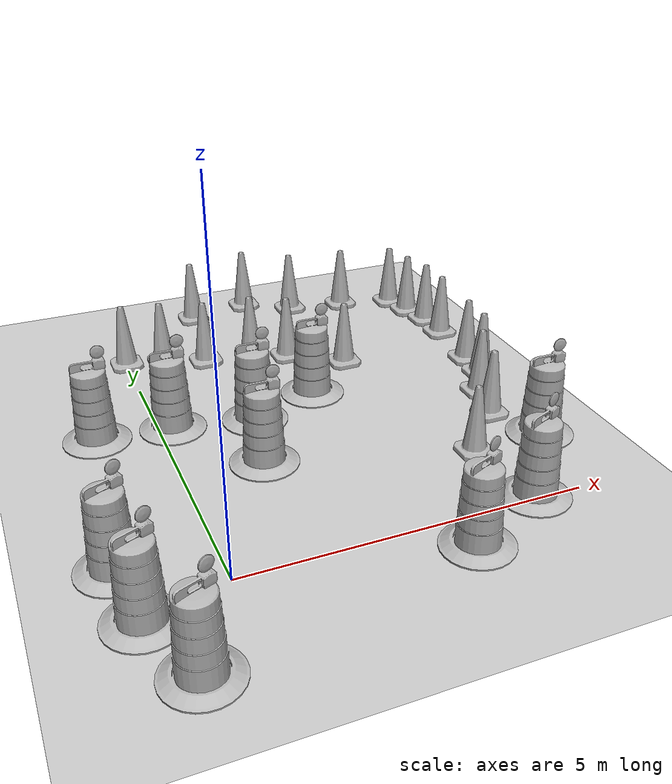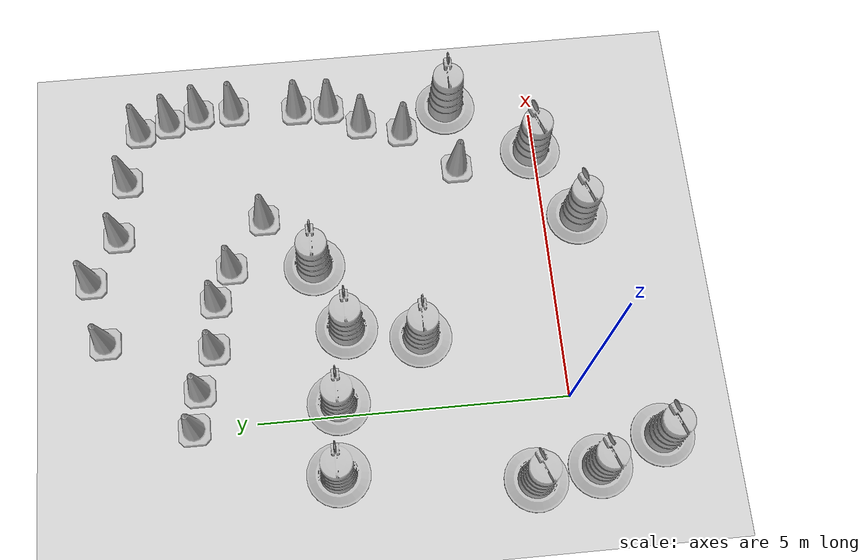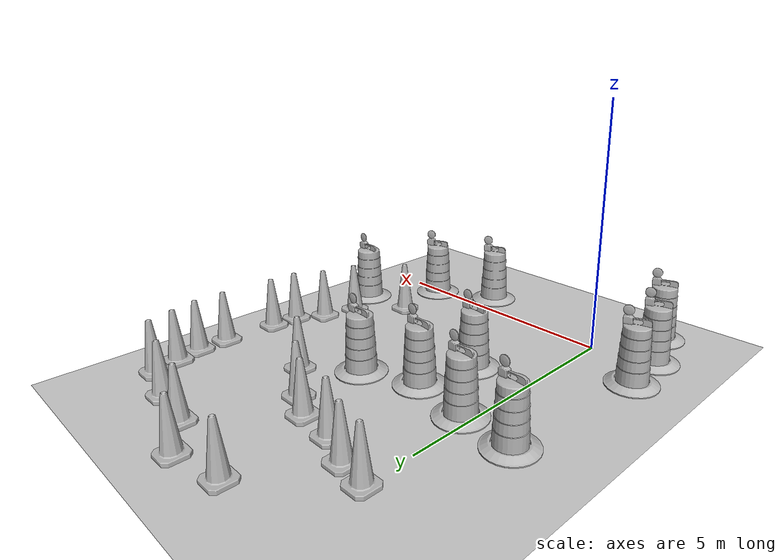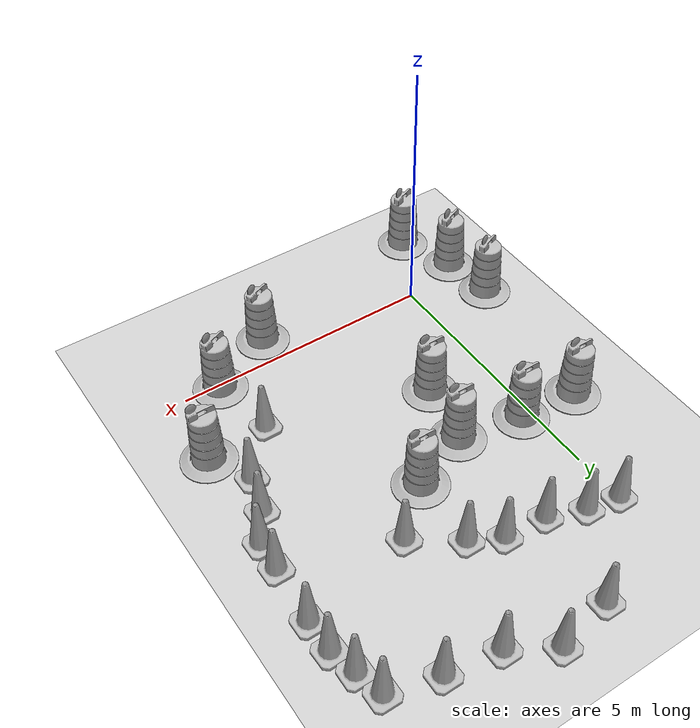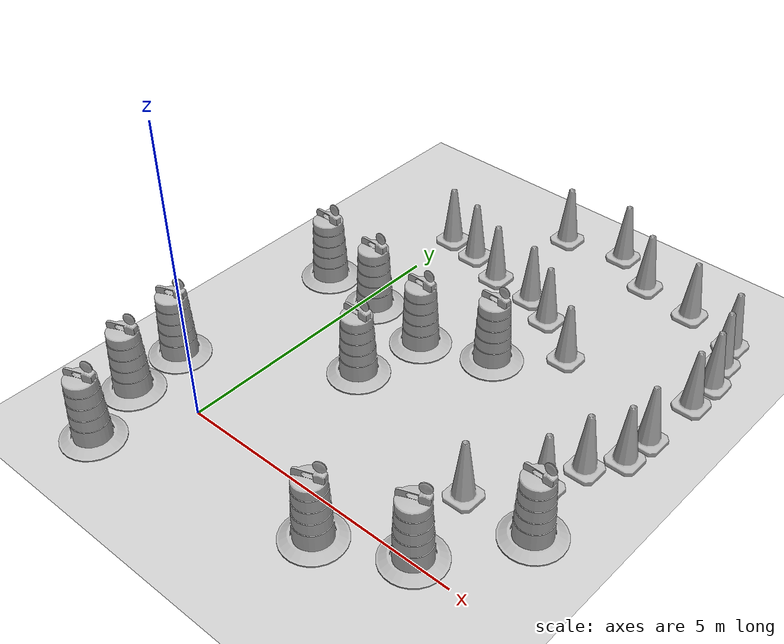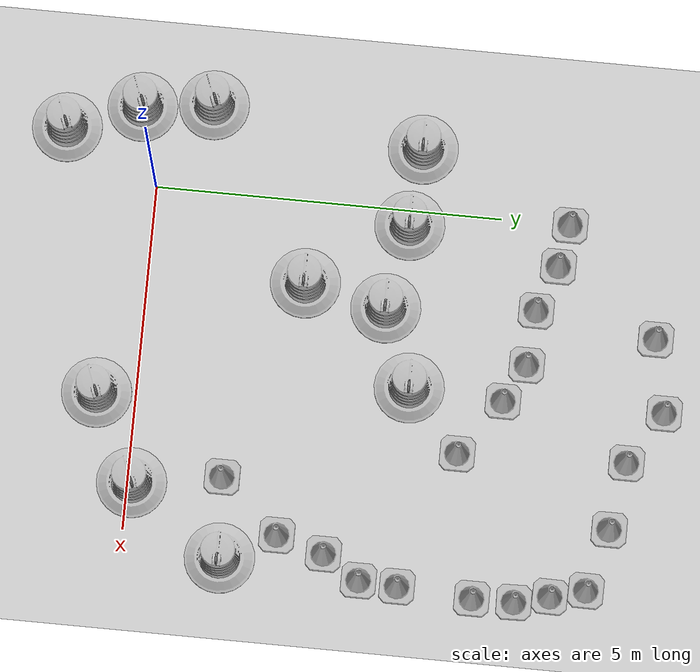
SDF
<sdf version="1.7">
 <world name="default">
  <light name="sun" type="directional">
   <pose>0 0 10 0 -0 0</pose>
   <diffuse>0.8 0.8 0.8 1</diffuse>
   <specular>0.2 0.2 0.2 1</specular>
   <attenuation>
    <range>1000</range>
    <constant>0.9</constant>
    <linear>0.01</linear>
    <quadratic>0.001</quadratic>
   </attenuation>
   <direction>-0.5 0.1 -0.9</direction>
   <spot><inner_angle>0</inner_angle><outer_angle>0</outer_angle><falloff>0</falloff></spot>
  </light>
  <model name="ground_plane">
   <static>1</static>
   <link name="link">
    <collision name="collision">
     <geometry><plane><normal>0 0 1</normal><size>100 100</size></plane></geometry>
     <surface>
      <contact><collide_bitmask>65535</collide_bitmask></contact>
      <friction><ode><mu>100</mu><mu2>50</mu2></ode></friction>
     </surface>
    </collision>
    <visual name="visual">
     <cast_shadows>0</cast_shadows>
     <geometry><plane><normal>0 0 1</normal><size>100 100</size></plane></geometry>
     <material>
      <script><uri>file://media/materials/scripts/gazebo.material</uri><name>Gazebo/Grey</name></script>
     </material>
    </visual>
   </link>
  </model>
  <gravity>0 0 -9.8</gravity>
  <magnetic_field>6e-06 2.3e-05 -4.2e-05</magnetic_field>
  <atmosphere type="adiabatic"/>
  <physics type="ode">
   <max_step_size>0.001</max_step_size>
   <real_time_factor>1</real_time_factor>
   <real_time_update_rate>1000</real_time_update_rate>
  </physics>
  <scene><ambient>0.4 0.4 0.4 1</ambient><background>0.7 0.7 0.7 1</background><shadows>1</shadows></scene>
  <spherical_coordinates>
   <surface_model>EARTH_WGS84</surface_model>
   <latitude_deg>0</latitude_deg>
   <longitude_deg>0</longitude_deg>
   <elevation>0</elevation>
   <heading_deg>0</heading_deg>
  </spherical_coordinates>
  <model name="Construction Cone">
   <link name="link">
    <collision name="collision">
     <geometry>
      <mesh><scale>10 10 10</scale><uri>model://construction_cone/meshes/construction_cone.dae</uri></mesh>
     </geometry>
    </collision>
    <visual name="visual">
     <geometry>
      <mesh><scale>10 10 10</scale><uri>model://construction_cone/meshes/construction_cone.dae</uri></mesh>
     </geometry>
    </visual>
    <inertial>
     <inertia><ixx>1</ixx><ixy>0</ixy><ixz>0</ixz><iyy>1</iyy><iyz>0</iyz><izz>1</izz></inertia>
     <mass>1</mass>
    </inertial>
   </link>
   <pose>4.11115 1.35486 -0 0 -1e-06 0</pose>
  </model>
  <model name="Construction Cone_clone">
   <link name="link">
    <collision name="collision">
     <geometry>
      <mesh><scale>10 10 10</scale><uri>model://construction_cone/meshes/construction_cone.dae</uri></mesh>
     </geometry>
    </collision>
    <visual name="visual">
     <geometry>
      <mesh><scale>10 10 10</scale><uri>model://construction_cone/meshes/construction_cone.dae</uri></mesh>
     </geometry>
    </visual>
    <inertial>
     <inertia><ixx>1</ixx><ixy>0</ixy><ixz>0</ixz><iyy>1</iyy><iyz>0</iyz><izz>1</izz></inertia>
     <mass>1</mass>
    </inertial>
   </link>
   <pose>5.44714 4 -0 0 -0 0</pose>
  </model>
  <model name="Construction Cone_clone_0">
   <link name="link">
    <collision name="collision">
     <geometry>
      <mesh><scale>10 10 10</scale><uri>model://construction_cone/meshes/construction_cone.dae</uri></mesh>
     </geometry>
    </collision>
    <visual name="visual">
     <geometry>
      <mesh><scale>10 10 10</scale><uri>model://construction_cone/meshes/construction_cone.dae</uri></mesh>
     </geometry>
    </visual>
    <inertial>
     <inertia><ixx>1</ixx><ixy>0</ixy><ixz>0</ixz><iyy>1</iyy><iyz>0</iyz><izz>1</izz></inertia>
     <mass>1</mass>
    </inertial>
   </link>
   <pose>4.8738 2.21665 -1e-06 2e-06 2e-06 0</pose>
  </model>
  <model name="Construction Cone_clone_1">
   <link name="link">
    <collision name="collision">
     <geometry>
      <mesh><scale>10 10 10</scale><uri>model://construction_cone/meshes/construction_cone.dae</uri></mesh>
     </geometry>
    </collision>
    <visual name="visual">
     <geometry>
      <mesh><scale>10 10 10</scale><uri>model://construction_cone/meshes/construction_cone.dae</uri></mesh>
     </geometry>
    </visual>
    <inertial>
     <inertia><ixx>1</ixx><ixy>0</ixy><ixz>0</ixz><iyy>1</iyy><iyz>0</iyz><izz>1</izz></inertia>
     <mass>1</mass>
    </inertial>
   </link>
   <pose>5.07983 2.90767 -0 0 -0 0</pose>
  </model>
  <model name="Construction Cone_clone_2">
   <link name="link">
    <collision name="collision">
     <geometry>
      <mesh><scale>10 10 10</scale><uri>model://construction_cone/meshes/construction_cone.dae</uri></mesh>
     </geometry>
    </collision>
    <visual name="visual">
     <geometry>
      <mesh><scale>10 10 10</scale><uri>model://construction_cone/meshes/construction_cone.dae</uri></mesh>
     </geometry>
    </visual>
    <inertial>
     <inertia><ixx>1</ixx><ixy>0</ixy><ixz>0</ixz><iyy>1</iyy><iyz>0</iyz><izz>1</izz></inertia>
     <mass>1</mass>
    </inertial>
   </link>
   <pose>5.41358 3.44366 -0 0 -0 0</pose>
  </model>
  <model name="Construction Cone_clone_3">
   <link name="link">
    <collision name="collision">
     <geometry>
      <mesh><scale>10 10 10</scale><uri>model://construction_cone/meshes/construction_cone.dae</uri></mesh>
     </geometry>
    </collision>
    <visual name="visual">
     <geometry>
      <mesh><scale>10 10 10</scale><uri>model://construction_cone/meshes/construction_cone.dae</uri></mesh>
     </geometry>
    </visual>
    <inertial>
     <inertia><ixx>1</ixx><ixy>0</ixy><ixz>0</ixz><iyy>1</iyy><iyz>0</iyz><izz>1</izz></inertia>
     <mass>1</mass>
    </inertial>
   </link>
   <pose>5.51895 5.08187 -0 0 -1e-06 0</pose>
  </model>
  <model name="Construction Cone_clone_4">
   <link name="link">
    <collision name="collision">
     <geometry>
      <mesh><scale>10 10 10</scale><uri>model://construction_cone/meshes/construction_cone.dae</uri></mesh>
     </geometry>
    </collision>
    <visual name="visual">
     <geometry>
      <mesh><scale>10 10 10</scale><uri>model://construction_cone/meshes/construction_cone.dae</uri></mesh>
     </geometry>
    </visual>
    <inertial>
     <inertia><ixx>1</ixx><ixy>0</ixy><ixz>0</ixz><iyy>1</iyy><iyz>0</iyz><izz>1</izz></inertia>
     <mass>1</mass>
    </inertial>
   </link>
   <pose>5.51597 5.68605 -0 -0 -1e-06 0.025179</pose>
  </model>
  <model name="Construction Cone_clone_5">
   <link name="link">
    <collision name="collision">
     <geometry>
      <mesh><scale>10 10 10</scale><uri>model://construction_cone/meshes/construction_cone.dae</uri></mesh>
     </geometry>
    </collision>
    <visual name="visual">
     <geometry>
      <mesh><scale>10 10 10</scale><uri>model://construction_cone/meshes/construction_cone.dae</uri></mesh>
     </geometry>
    </visual>
    <inertial>
     <inertia><ixx>1</ixx><ixy>0</ixy><ixz>0</ixz><iyy>1</iyy><iyz>0</iyz><izz>1</izz></inertia>
     <mass>1</mass>
    </inertial>
   </link>
   <pose>5.38723 6.19331 0 -1e-06 -0 -0.016993</pose>
  </model>
  <model name="Construction Cone_clone_6">
   <link name="link">
    <collision name="collision">
     <geometry>
      <mesh><scale>10 10 10</scale><uri>model://construction_cone/meshes/construction_cone.dae</uri></mesh>
     </geometry>
    </collision>
    <visual name="visual">
     <geometry>
      <mesh><scale>10 10 10</scale><uri>model://construction_cone/meshes/construction_cone.dae</uri></mesh>
     </geometry>
    </visual>
    <inertial>
     <inertia><ixx>1</ixx><ixy>0</ixy><ixz>0</ixz><iyy>1</iyy><iyz>0</iyz><izz>1</izz></inertia>
     <mass>1</mass>
    </inertial>
   </link>
   <pose>5.2527 6.69958 -0 0 0 -0.009583</pose>
  </model>
  <model name="Construction Cone_clone_7">
   <link name="link">
    <collision name="collision">
     <geometry>
      <mesh><scale>10 10 10</scale><uri>model://construction_cone/meshes/construction_cone.dae</uri></mesh>
     </geometry>
    </collision>
    <visual name="visual">
     <geometry>
      <mesh><scale>10 10 10</scale><uri>model://construction_cone/meshes/construction_cone.dae</uri></mesh>
     </geometry>
    </visual>
    <inertial>
     <inertia><ixx>1</ixx><ixy>0</ixy><ixz>0</ixz><iyy>1</iyy><iyz>0</iyz><izz>1</izz></inertia>
     <mass>1</mass>
    </inertial>
   </link>
   <pose>4.34631 6.95332 -0 0 -0 0</pose>
  </model>
  <model name="Construction Cone_clone_8">
   <link name="link">
    <collision name="collision">
     <geometry>
      <mesh><scale>10 10 10</scale><uri>model://construction_cone/meshes/construction_cone.dae</uri></mesh>
     </geometry>
    </collision>
    <visual name="visual">
     <geometry>
      <mesh><scale>10 10 10</scale><uri>model://construction_cone/meshes/construction_cone.dae</uri></mesh>
     </geometry>
    </visual>
    <inertial>
     <inertia><ixx>1</ixx><ixy>0</ixy><ixz>0</ixz><iyy>1</iyy><iyz>0</iyz><izz>1</izz></inertia>
     <mass>1</mass>
    </inertial>
   </link>
   <pose>3.36488 7.11594 -0 0 -1e-06 0</pose>
  </model>
  <model name="Construction Cone_clone_9">
   <link name="link">
    <collision name="collision">
     <geometry>
      <mesh><scale>10 10 10</scale><uri>model://construction_cone/meshes/construction_cone.dae</uri></mesh>
     </geometry>
    </collision>
    <visual name="visual">
     <geometry>
      <mesh><scale>10 10 10</scale><uri>model://construction_cone/meshes/construction_cone.dae</uri></mesh>
     </geometry>
    </visual>
    <inertial>
     <inertia><ixx>1</ixx><ixy>0</ixy><ixz>0</ixz><iyy>1</iyy><iyz>0</iyz><izz>1</izz></inertia>
     <mass>1</mass>
    </inertial>
   </link>
   <pose>2.59784 7.59086 -0 0 -0 0</pose>
  </model>
  <model name="Construction Cone_clone_10">
   <link name="link">
    <collision name="collision">
     <geometry>
      <mesh><scale>10 10 10</scale><uri>model://construction_cone/meshes/construction_cone.dae</uri></mesh>
     </geometry>
    </collision>
    <visual name="visual">
     <geometry>
      <mesh><scale>10 10 10</scale><uri>model://construction_cone/meshes/construction_cone.dae</uri></mesh>
     </geometry>
    </visual>
    <inertial>
     <inertia><ixx>1</ixx><ixy>0</ixy><ixz>0</ixz><iyy>1</iyy><iyz>0</iyz><izz>1</izz></inertia>
     <mass>1</mass>
    </inertial>
   </link>
   <pose>1.53958 7.37547 -1e-06 2e-06 2e-06 0</pose>
  </model>
  <model name="Construction Cone_clone_11">
   <link name="link">
    <collision name="collision">
     <geometry>
      <mesh><scale>10 10 10</scale><uri>model://construction_cone/meshes/construction_cone.dae</uri></mesh>
     </geometry>
    </collision>
    <visual name="visual">
     <geometry>
      <mesh><scale>10 10 10</scale><uri>model://construction_cone/meshes/construction_cone.dae</uri></mesh>
     </geometry>
    </visual>
    <inertial>
     <inertia><ixx>1</ixx><ixy>0</ixy><ixz>0</ixz><iyy>1</iyy><iyz>0</iyz><izz>1</izz></inertia>
     <mass>1</mass>
    </inertial>
   </link>
   <pose>3.45701 4.6835 -0 0 -1e-06 0</pose>
  </model>
  <model name="Construction Cone_clone_12">
   <link name="link">
    <collision name="collision">
     <geometry>
      <mesh><scale>10 10 10</scale><uri>model://construction_cone/meshes/construction_cone.dae</uri></mesh>
     </geometry>
    </collision>
    <visual name="visual">
     <geometry>
      <mesh><scale>10 10 10</scale><uri>model://construction_cone/meshes/construction_cone.dae</uri></mesh>
     </geometry>
    </visual>
    <inertial>
     <inertia><ixx>1</ixx><ixy>0</ixy><ixz>0</ixz><iyy>1</iyy><iyz>0</iyz><izz>1</izz></inertia>
     <mass>1</mass>
    </inertial>
   </link>
   <pose>2.64016 5.26806 -0 0 -1e-06 0</pose>
  </model>
  <model name="Construction Cone_clone_13">
   <link name="link">
    <collision name="collision">
     <geometry>
      <mesh><scale>10 10 10</scale><uri>model://construction_cone/meshes/construction_cone.dae</uri></mesh>
     </geometry>
    </collision>
    <visual name="visual">
     <geometry>
      <mesh><scale>10 10 10</scale><uri>model://construction_cone/meshes/construction_cone.dae</uri></mesh>
     </geometry>
    </visual>
    <inertial>
     <inertia><ixx>1</ixx><ixy>0</ixy><ixz>0</ixz><iyy>1</iyy><iyz>0</iyz><izz>1</izz></inertia>
     <mass>1</mass>
    </inertial>
   </link>
   <pose>2.0834 5.56011 0 -0 -0 -0</pose>
  </model>
  <model name="Construction Cone_clone_14">
   <link name="link">
    <collision name="collision">
     <geometry>
      <mesh><scale>10 10 10</scale><uri>model://construction_cone/meshes/construction_cone.dae</uri></mesh>
     </geometry>
    </collision>
    <visual name="visual">
     <geometry>
      <mesh><scale>10 10 10</scale><uri>model://construction_cone/meshes/construction_cone.dae</uri></mesh>
     </geometry>
    </visual>
    <inertial>
     <inertia><ixx>1</ixx><ixy>0</ixy><ixz>0</ixz><iyy>1</iyy><iyz>0</iyz><izz>1</izz></inertia>
     <mass>1</mass>
    </inertial>
   </link>
   <pose>1.28512 5.62517 0 -0 -0 -0</pose>
  </model>
  <model name="Construction Cone_clone_15">
   <link name="link">
    <collision name="collision">
     <geometry>
      <mesh><scale>10 10 10</scale><uri>model://construction_cone/meshes/construction_cone.dae</uri></mesh>
     </geometry>
    </collision>
    <visual name="visual">
     <geometry>
      <mesh><scale>10 10 10</scale><uri>model://construction_cone/meshes/construction_cone.dae</uri></mesh>
     </geometry>
    </visual>
    <inertial>
     <inertia><ixx>1</ixx><ixy>0</ixy><ixz>0</ixz><iyy>1</iyy><iyz>0</iyz><izz>1</izz></inertia>
     <mass>1</mass>
    </inertial>
   </link>
   <pose>0 6 -0 0 -1e-06 0</pose>
  </model>
  <model name="Construction Cone_clone_16">
   <link name="link">
    <collision name="collision">
     <geometry>
      <mesh><scale>10 10 10</scale><uri>model://construction_cone/meshes/construction_cone.dae</uri></mesh>
     </geometry>
    </collision>
    <visual name="visual">
     <geometry>
      <mesh><scale>10 10 10</scale><uri>model://construction_cone/meshes/construction_cone.dae</uri></mesh>
     </geometry>
    </visual>
    <inertial>
     <inertia><ixx>1</ixx><ixy>0</ixy><ixz>0</ixz><iyy>1</iyy><iyz>0</iyz><izz>1</izz></inertia>
     <mass>1</mass>
    </inertial>
   </link>
   <pose>0.61327 5.88465 -0 0 -0 0</pose>
  </model>
  <model name="Construction Barrel_clone">
   <link name="link">
    <inertial>
     <pose>0 0 0.4 0 -0 0</pose>
     <mass>500</mass>
     <inertia><ixx>51.2096</ixx><iyy>51.2096</iyy><izz>25</izz><ixy>0</ixy><ixz>0</ixz><iyz>0</iyz></inertia>
    </inertial>
    <collision name="collision">
     <geometry><mesh><uri>model://construction_barrel/meshes/construction_barrel.dae</uri></mesh></geometry>
    </collision>
    <visual name="visual">
     <geometry><mesh><uri>model://construction_barrel/meshes/construction_barrel.dae</uri></mesh></geometry>
    </visual>
   </link>
   <pose>2.57175 3.90536 0 0 0 -4.3e-05</pose>
  </model>
  <model name="Construction Barrel_clone_0">
   <link name="link">
    <inertial>
     <pose>0 0 0.4 0 -0 0</pose>
     <mass>500</mass>
     <inertia><ixx>51.2096</ixx><iyy>51.2096</iyy><izz>25</izz><ixy>0</ixy><ixz>0</ixz><iyz>0</iyz></inertia>
    </inertial>
    <collision name="collision">
     <geometry><mesh><uri>model://construction_barrel/meshes/construction_barrel.dae</uri></mesh></geometry>
    </collision>
    <visual name="visual">
     <geometry><mesh><uri>model://construction_barrel/meshes/construction_barrel.dae</uri></mesh></geometry>
    </visual>
   </link>
   <pose>1.44913 3.46082 -0 0 -0 -3.8e-05</pose>
  </model>
  <model name="Construction Barrel_clone_1">
   <link name="link">
    <inertial>
     <pose>0 0 0.4 0 -0 0</pose>
     <mass>500</mass>
     <inertia><ixx>51.2096</ixx><iyy>51.2096</iyy><izz>25</izz><ixy>0</ixy><ixz>0</ixz><iyz>0</iyz></inertia>
    </inertial>
    <collision name="collision">
     <geometry><mesh><uri>model://construction_barrel/meshes/construction_barrel.dae</uri></mesh></geometry>
    </collision>
    <visual name="visual">
     <geometry><mesh><uri>model://construction_barrel/meshes/construction_barrel.dae</uri></mesh></geometry>
    </visual>
   </link>
   <pose>1.19699 2.27329 -1e-06 4e-06 -1e-06 -4.6e-05</pose>
  </model>
  <model name="Construction Barrel_clone_3">
   <link name="link">
    <inertial>
     <pose>0 0 0.4 0 -0 0</pose>
     <mass>500</mass>
     <inertia><ixx>51.2096</ixx><iyy>51.2096</iyy><izz>25</izz><ixy>0</ixy><ixz>0</ixz><iyz>0</iyz></inertia>
    </inertial>
    <collision name="collision">
     <geometry><mesh><uri>model://construction_barrel/meshes/construction_barrel.dae</uri></mesh></geometry>
    </collision>
    <visual name="visual">
     <geometry><mesh><uri>model://construction_barrel/meshes/construction_barrel.dae</uri></mesh></geometry>
    </visual>
   </link>
   <pose>5.27638 1.42858 -0 0 -0 -4e-05</pose>
  </model>
  <model name="Construction Barrel_clone_2">
   <link name="link">
    <inertial>
     <pose>0 0 0.4 0 -0 0</pose>
     <mass>500</mass>
     <inertia><ixx>51.2096</ixx><iyy>51.2096</iyy><izz>25</izz><ixy>0</ixy><ixz>0</ixz><iyz>0</iyz></inertia>
    </inertial>
    <collision name="collision">
     <geometry><mesh><uri>model://construction_barrel/meshes/construction_barrel.dae</uri></mesh></geometry>
    </collision>
    <visual name="visual">
     <geometry><mesh><uri>model://construction_barrel/meshes/construction_barrel.dae</uri></mesh></geometry>
    </visual>
   </link>
   <pose>0.217142 3.69356 0 0 0 -4.2e-05</pose>
  </model>
  <model name="Construction Barrel_clone_4">
   <link name="link">
    <inertial>
     <pose>0 0 0.4 0 -0 0</pose>
     <mass>500</mass>
     <inertia><ixx>51.2096</ixx><iyy>51.2096</iyy><izz>25</izz><ixy>0</ixy><ixz>0</ixz><iyz>0</iyz></inertia>
    </inertial>
    <collision name="collision">
     <geometry><mesh><uri>model://construction_barrel/meshes/construction_barrel.dae</uri></mesh></geometry>
    </collision>
    <visual name="visual">
     <geometry><mesh><uri>model://construction_barrel/meshes/construction_barrel.dae</uri></mesh></geometry>
    </visual>
   </link>
   <pose>-0.909898 3.78406 -1e-06 5e-06 -3e-06 -4.1e-05</pose>
  </model>
  <model name="Construction Barrel_clone_6">
   <link name="link">
    <inertial>
     <pose>0 0 0.4 0 -0 0</pose>
     <mass>500</mass>
     <inertia><ixx>51.2096</ixx><iyy>51.2096</iyy><izz>25</izz><ixy>0</ixy><ixz>0</ixz><iyz>0</iyz></inertia>
    </inertial>
    <collision name="collision">
     <geometry><mesh><uri>model://construction_barrel/meshes/construction_barrel.dae</uri></mesh></geometry>
    </collision>
    <visual name="visual">
     <geometry><mesh><uri>model://construction_barrel/meshes/construction_barrel.dae</uri></mesh></geometry>
    </visual>
   </link>
   <pose>-1.27269 0.71265 -1e-06 0 4e-06 0.369304</pose>
  </model>
  <model name="Construction Barrel_clone_7">
   <link name="link">
    <inertial>
     <pose>0 0 0.4 0 -0 0</pose>
     <mass>500</mass>
     <inertia><ixx>51.2096</ixx><iyy>51.2096</iyy><izz>25</izz><ixy>0</ixy><ixz>0</ixz><iyz>0</iyz></inertia>
    </inertial>
    <collision name="collision">
     <geometry><mesh><uri>model://construction_barrel/meshes/construction_barrel.dae</uri></mesh></geometry>
    </collision>
    <visual name="visual">
     <geometry><mesh><uri>model://construction_barrel/meshes/construction_barrel.dae</uri></mesh></geometry>
    </visual>
   </link>
   <pose>4.31434 0.066381 -1e-06 0 4e-06 0.369305</pose>
  </model>
  <model name="Construction Barrel_clone_8">
   <link name="link">
    <inertial>
     <pose>0 0 0.4 0 -0 0</pose>
     <mass>500</mass>
     <inertia><ixx>51.2096</ixx><iyy>51.2096</iyy><izz>25</izz><ixy>0</ixy><ixz>0</ixz><iyz>0</iyz></inertia>
    </inertial>
    <collision name="collision">
     <geometry><mesh><uri>model://construction_barrel/meshes/construction_barrel.dae</uri></mesh></geometry>
    </collision>
    <visual name="visual">
     <geometry><mesh><uri>model://construction_barrel/meshes/construction_barrel.dae</uri></mesh></geometry>
    </visual>
   </link>
   <pose>3.06232 -0.563911 -1e-06 0 4e-06 0.369305</pose>
  </model>
  <model name="Construction Barrel_clone_9">
   <link name="link">
    <inertial>
     <pose>0 0 0.4 0 -0 0</pose>
     <mass>500</mass>
     <inertia><ixx>51.2096</ixx><iyy>51.2096</iyy><izz>25</izz><ixy>0</ixy><ixz>0</ixz><iyz>0</iyz></inertia>
    </inertial>
    <collision name="collision">
     <geometry><mesh><uri>model://construction_barrel/meshes/construction_barrel.dae</uri></mesh></geometry>
    </collision>
    <visual name="visual">
     <geometry><mesh><uri>model://construction_barrel/meshes/construction_barrel.dae</uri></mesh></geometry>
    </visual>
   </link>
   <pose>-1.15027 -0.316786 -1e-06 0 4e-06 0.369306</pose>
  </model>
  <model name="Construction Barrel_clone_10">
   <link name="link">
    <inertial>
     <pose>0 0 0.4 0 -0 0</pose>
     <mass>500</mass>
     <inertia><ixx>51.2096</ixx><iyy>51.2096</iyy><izz>25</izz><ixy>0</ixy><ixz>0</ixz><iyz>0</iyz></inertia>
    </inertial>
    <collision name="collision">
     <geometry><mesh><uri>model://construction_barrel/meshes/construction_barrel.dae</uri></mesh></geometry>
    </collision>
    <visual name="visual">
     <geometry><mesh><uri>model://construction_barrel/meshes/construction_barrel.dae</uri></mesh></geometry>
    </visual>
   </link>
   <pose>-0.750732 -1.37335 -1e-06 0 4e-06 0.369307</pose>
  </model>
 </world>
</sdf>
